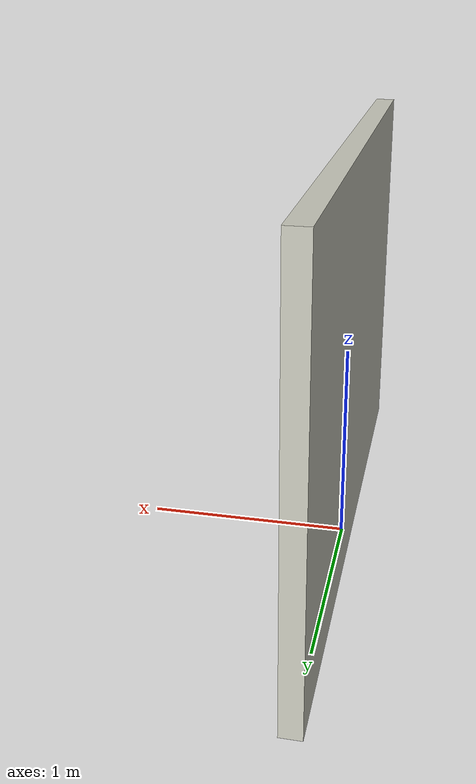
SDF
<?xml version="1.0"?>
<sdf version="1.9">
  <model name="wall">
    <static>true</static>
    <!-- 3 m wide (Y), 2 m high (Z), 0.1 m thick (X). The model origin is on the floor at the centre of the wall. -->
    <link name="wall">
      <pose>0 0 1.0 0 0 0</pose>
      <collision name="collision">
        <geometry><box><size>0.1 3.0 2.0</size></box></geometry>
      </collision>
      <visual name="visual">
        <geometry><box><size>0.1 3.0 2.0</size></box></geometry>
        <material>
          <ambient>0.8 0.8 0.75 1</ambient>
          <diffuse>0.8 0.8 0.75 1</diffuse>
        </material>
      </visual>
    </link>
  </model>
</sdf>
